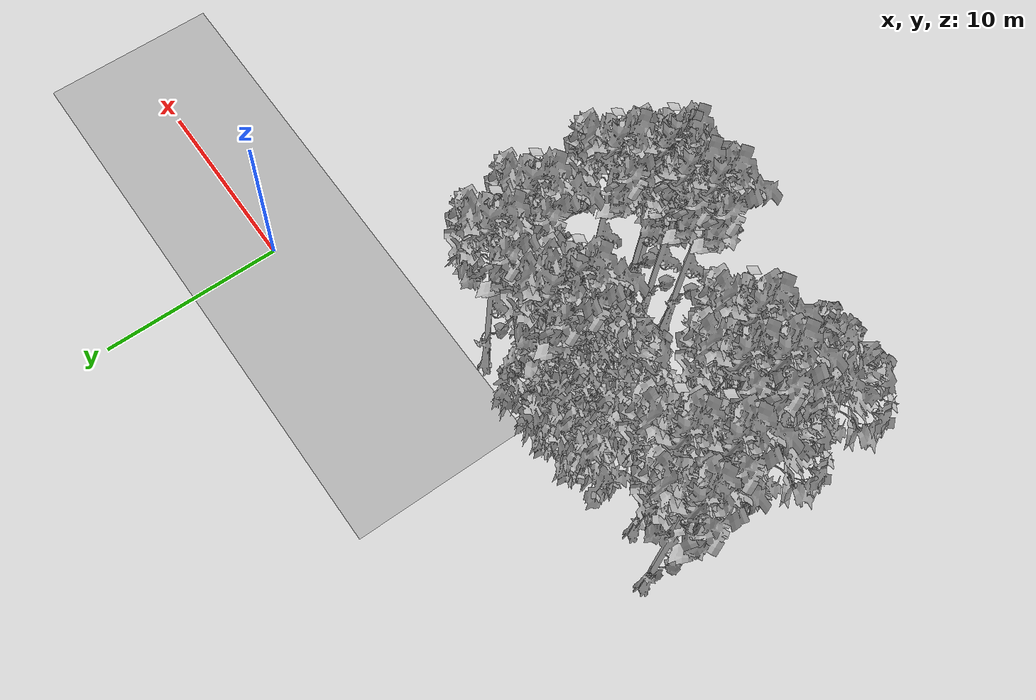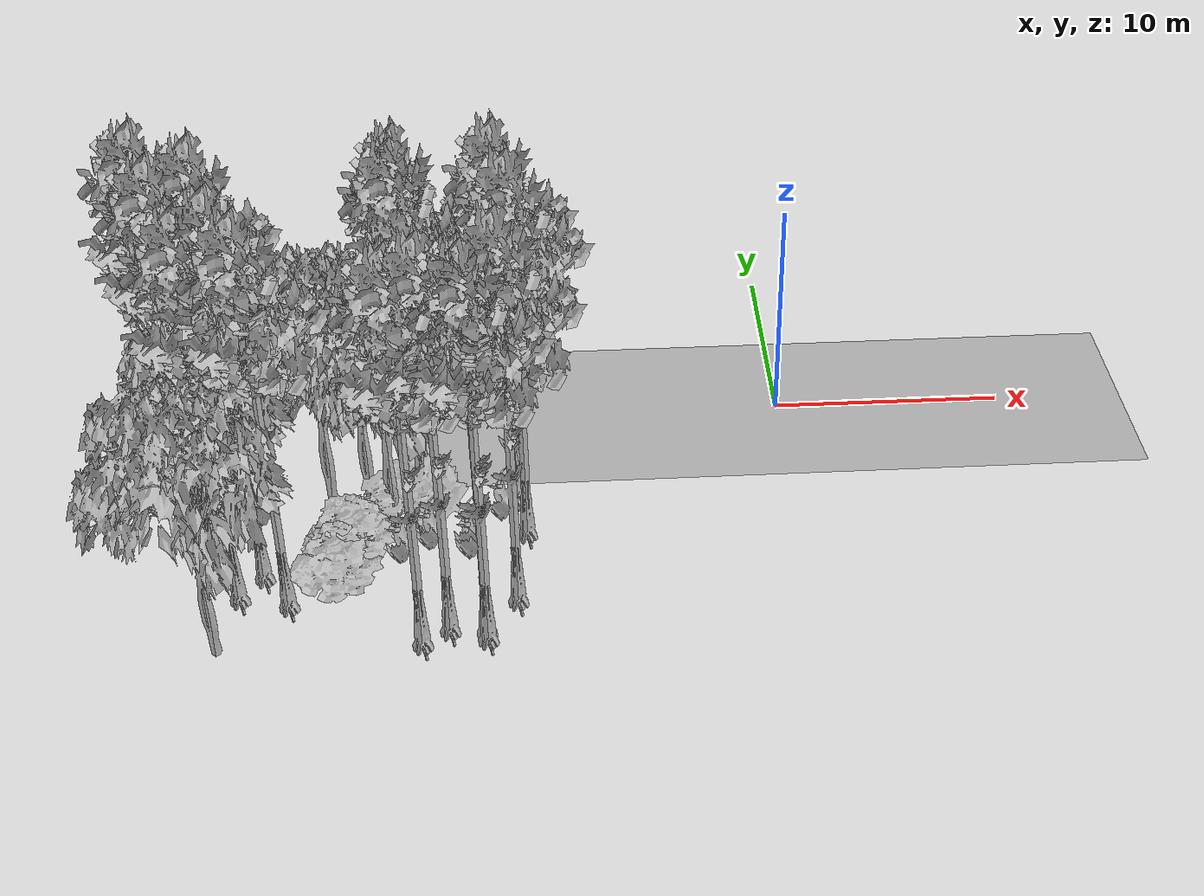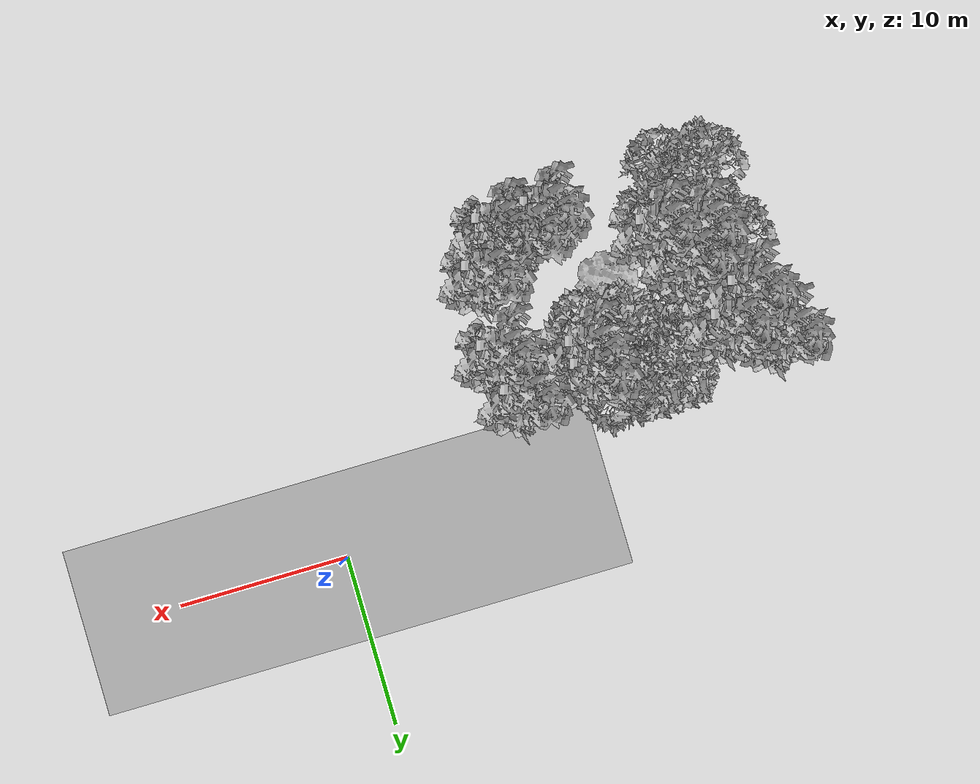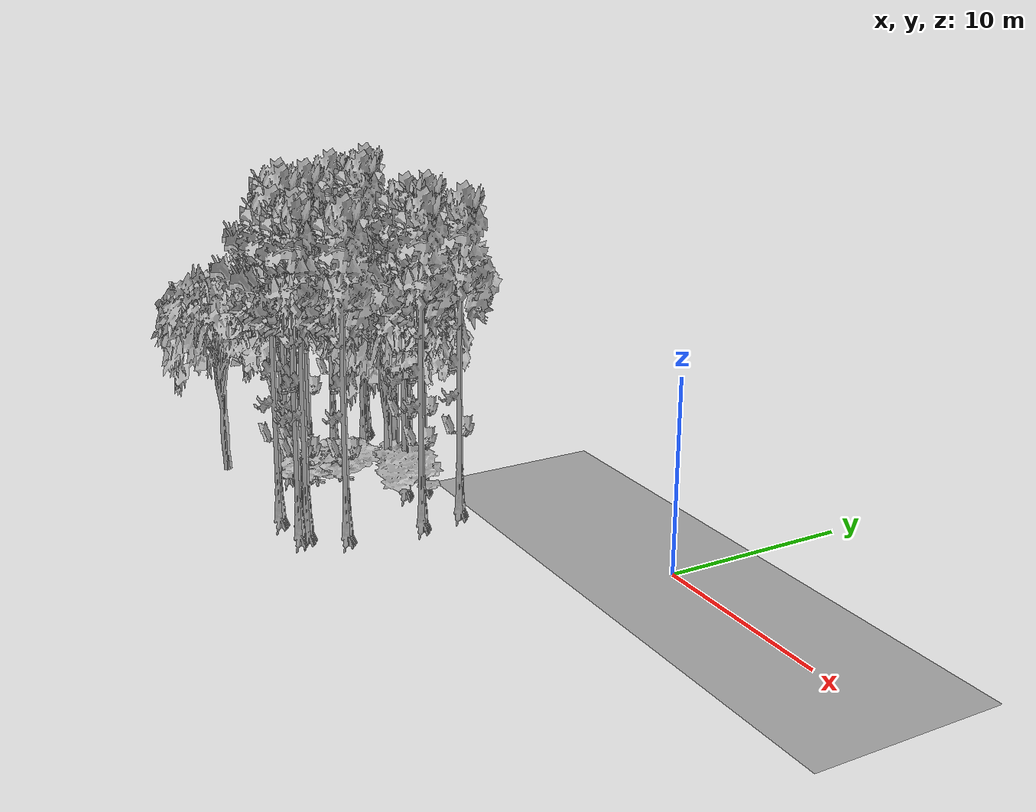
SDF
<sdf version="1.7">
 <world name="default">
  <model name="ground_plane">
   <static>1</static>
   <link name="link">
    <collision name="collision">
     <pose>-50 0 0 0 -0 0</pose>
     <geometry><plane><normal>0 0 1</normal><size>100 100</size></plane></geometry>
     <surface><contact><ode><min_depth>0.01</min_depth><max_vel>0</max_vel></ode></contact></surface>
    </collision>
    <visual name="grass">
     <cast_shadows>0</cast_shadows>
     <geometry>
      <mesh>
       <scale>0.5814285714285714 0.18142857142857144 0.1</scale>
       <uri>file://grass_plane/meshes/grass_plane.dae</uri>
      </mesh>
     </geometry>
    </visual>
   </link>
  </model>
  <model name="Tree 26">
   <static>1</static>
   <pose>-21.81426646399814 -9.955179589205766 0 1.57079 -0 0</pose>
   <link name="link">
    <collision name="collision">
     <geometry><mesh><scale>3.5 5 3.5</scale><uri>model://tree_9/meshes/tree_9.obj</uri></mesh></geometry>
    </collision>
    <visual name="visual">
     <geometry><mesh><scale>3.5 5 3.5</scale><uri>model://tree_9/meshes/tree_9.obj</uri></mesh></geometry>
    </visual>
   </link>
  </model>
  <model name="Tree 32">
   <static>1</static>
   <pose>-25.263312509131836 -4.865524858127504 0 1.57079 -0 0</pose>
   <link name="link">
    <collision name="collision">
     <geometry><mesh><scale>3.5 5 3.5</scale><uri>model://tree_9/meshes/tree_9.obj</uri></mesh></geometry>
    </collision>
    <visual name="visual">
     <geometry><mesh><scale>3.5 5 3.5</scale><uri>model://tree_9/meshes/tree_9.obj</uri></mesh></geometry>
    </visual>
   </link>
  </model>
  <model name="Tree 40">
   <static>1</static>
   <pose>-18.925213621081156 -10.67465627036351 0 1.57079 -0 0</pose>
   <link name="link">
    <collision name="collision">
     <geometry><mesh><scale>4 2.5 4</scale><uri>model://tree_1/meshes/tree_1.obj</uri></mesh></geometry>
    </collision>
    <visual name="visual">
     <geometry><mesh><scale>4 2.5 4</scale><uri>model://tree_1/meshes/tree_1.obj</uri></mesh></geometry>
    </visual>
   </link>
  </model>
  <model name="Tree 88">
   <static>1</static>
   <pose>-22.667752243933972 -11.171424832539866 0 1.57079 -0 0</pose>
   <link name="link">
    <collision name="collision">
     <geometry><mesh><scale>3.5 5 3.5</scale><uri>model://tree_9/meshes/tree_9.obj</uri></mesh></geometry>
    </collision>
    <visual name="visual">
     <geometry><mesh><scale>3.5 5 3.5</scale><uri>model://tree_9/meshes/tree_9.obj</uri></mesh></geometry>
    </visual>
   </link>
  </model>
  <model name="Tree 106">
   <static>1</static>
   <pose>-15.326778111708776 -14.18018601526747 0 1.57079 -0 0</pose>
   <link name="link">
    <collision name="collision">
     <geometry><mesh><scale>3.5 5 3.5</scale><uri>model://tree_9/meshes/tree_9.obj</uri></mesh></geometry>
    </collision>
    <visual name="visual">
     <geometry><mesh><scale>3.5 5 3.5</scale><uri>model://tree_9/meshes/tree_9.obj</uri></mesh></geometry>
    </visual>
   </link>
  </model>
  <model name="Tree 119">
   <static>1</static>
   <pose>-16.790973046260042 -7.2710794713519515 0 1.57079 -0 0</pose>
   <link name="link">
    <collision name="collision">
     <geometry><mesh><scale>3.5 5 3.5</scale><uri>model://tree_2/meshes/tree_2.obj</uri></mesh></geometry>
    </collision>
    <visual name="visual">
     <geometry><mesh><scale>3.5 5 3.5</scale><uri>model://tree_2/meshes/tree_2.obj</uri></mesh></geometry>
    </visual>
   </link>
  </model>
  <model name="Tree 120">
   <static>1</static>
   <pose>-11.755123277487499 -5.40728953295236 0 1.57079 -0 0</pose>
   <link name="link">
    <collision name="collision">
     <geometry><mesh><scale>3.5 5 3.5</scale><uri>model://tree_9/meshes/tree_9.obj</uri></mesh></geometry>
    </collision>
    <visual name="visual">
     <geometry><mesh><scale>3.5 5 3.5</scale><uri>model://tree_9/meshes/tree_9.obj</uri></mesh></geometry>
    </visual>
   </link>
  </model>
  <model name="Tree 156">
   <static>1</static>
   <pose>-11.636256380521388 -11.921965326007623 0 1.57079 -0 0</pose>
   <link name="link">
    <collision name="collision">
     <geometry><mesh><scale>3.5 5 3.5</scale><uri>model://tree_9/meshes/tree_9.obj</uri></mesh></geometry>
    </collision>
    <visual name="visual">
     <geometry><mesh><scale>3.5 5 3.5</scale><uri>model://tree_9/meshes/tree_9.obj</uri></mesh></geometry>
    </visual>
   </link>
  </model>
  <model name="Tree 197">
   <static>1</static>
   <pose>-20.672781784686784 -11.694778869143912 0 1.57079 -0 0</pose>
   <link name="link">
    <collision name="collision">
     <geometry><mesh><scale>3.5 5 3.5</scale><uri>model://tree_9/meshes/tree_9.obj</uri></mesh></geometry>
    </collision>
    <visual name="visual">
     <geometry><mesh><scale>3.5 5 3.5</scale><uri>model://tree_9/meshes/tree_9.obj</uri></mesh></geometry>
    </visual>
   </link>
  </model>
  <model name="Tree 220">
   <static>1</static>
   <pose>-23.218907804226607 -14.469249434961368 0 1.57079 -0 0</pose>
   <link name="link">
    <collision name="collision">
     <geometry><mesh><scale>3.5 5 3.5</scale><uri>model://tree_2/meshes/tree_2.obj</uri></mesh></geometry>
    </collision>
    <visual name="visual">
     <geometry><mesh><scale>3.5 5 3.5</scale><uri>model://tree_2/meshes/tree_2.obj</uri></mesh></geometry>
    </visual>
   </link>
  </model>
  <model name="Tree 242">
   <static>1</static>
   <pose>-18.553112595651527 -9.096279184458105 0 1.57079 -0 0</pose>
   <link name="link">
    <collision name="collision">
     <geometry><mesh><scale>4 2.5 4</scale><uri>model://tree_1/meshes/tree_1.obj</uri></mesh></geometry>
    </collision>
    <visual name="visual">
     <geometry><mesh><scale>4 2.5 4</scale><uri>model://tree_1/meshes/tree_1.obj</uri></mesh></geometry>
    </visual>
   </link>
  </model>
  <model name="Tree 248">
   <static>1</static>
   <pose>-23.54117143861774 -10.493422344050998 0 1.57079 -0 0</pose>
   <link name="link">
    <collision name="collision">
     <geometry><mesh><scale>3.5 5 3.5</scale><uri>model://tree_2/meshes/tree_2.obj</uri></mesh></geometry>
    </collision>
    <visual name="visual">
     <geometry><mesh><scale>3.5 5 3.5</scale><uri>model://tree_2/meshes/tree_2.obj</uri></mesh></geometry>
    </visual>
   </link>
  </model>
  <model name="Tree 289">
   <static>1</static>
   <pose>-15.466106259153904 -5.681305318299573 0 1.57079 -0 0</pose>
   <link name="link">
    <collision name="collision">
     <geometry><mesh><scale>3.5 5 3.5</scale><uri>model://tree_9/meshes/tree_9.obj</uri></mesh></geometry>
    </collision>
    <visual name="visual">
     <geometry><mesh><scale>3.5 5 3.5</scale><uri>model://tree_9/meshes/tree_9.obj</uri></mesh></geometry>
    </visual>
   </link>
  </model>
  <model name="Tree 302">
   <static>1</static>
   <pose>-17.916037148924204 -5.45546969509477 0 1.57079 -0 0</pose>
   <link name="link">
    <collision name="collision">
     <geometry><mesh><scale>3.5 5 3.5</scale><uri>model://tree_2/meshes/tree_2.obj</uri></mesh></geometry>
    </collision>
    <visual name="visual">
     <geometry><mesh><scale>3.5 5 3.5</scale><uri>model://tree_2/meshes/tree_2.obj</uri></mesh></geometry>
    </visual>
   </link>
  </model>
  <model name="Tree 312">
   <static>1</static>
   <pose>-19.490180313389512 -5.56123504551617 0 1.57079 -0 0</pose>
   <link name="link">
    <collision name="collision">
     <geometry><mesh><scale>3.5 5 3.5</scale><uri>model://tree_2/meshes/tree_2.obj</uri></mesh></geometry>
    </collision>
    <visual name="visual">
     <geometry><mesh><scale>3.5 5 3.5</scale><uri>model://tree_2/meshes/tree_2.obj</uri></mesh></geometry>
    </visual>
   </link>
  </model>
  <model name="Tree 333">
   <static>1</static>
   <pose>-14.283443841256009 -13.462738141952128 0 1.57079 -0 0</pose>
   <link name="link">
    <collision name="collision">
     <geometry><mesh><scale>3.5 5 3.5</scale><uri>model://tree_9/meshes/tree_9.obj</uri></mesh></geometry>
    </collision>
    <visual name="visual">
     <geometry><mesh><scale>3.5 5 3.5</scale><uri>model://tree_9/meshes/tree_9.obj</uri></mesh></geometry>
    </visual>
   </link>
  </model>
  <model name="Tree 343">
   <static>1</static>
   <pose>-11.243578233066962 -7.864538664450418 0 1.57079 -0 0</pose>
   <link name="link">
    <collision name="collision">
     <geometry><mesh><scale>3.5 5 3.5</scale><uri>model://tree_9/meshes/tree_9.obj</uri></mesh></geometry>
    </collision>
    <visual name="visual">
     <geometry><mesh><scale>3.5 5 3.5</scale><uri>model://tree_9/meshes/tree_9.obj</uri></mesh></geometry>
    </visual>
   </link>
  </model>
  <model name="Tree 356">
   <static>1</static>
   <pose>-24.21181855692099 -7.474295265052751 0 1.57079 -0 0</pose>
   <link name="link">
    <collision name="collision">
     <geometry><mesh><scale>3.5 5 3.5</scale><uri>model://tree_9/meshes/tree_9.obj</uri></mesh></geometry>
    </collision>
    <visual name="visual">
     <geometry><mesh><scale>3.5 5 3.5</scale><uri>model://tree_9/meshes/tree_9.obj</uri></mesh></geometry>
    </visual>
   </link>
  </model>
  <model name="Tree 357">
   <static>1</static>
   <pose>-12.852554006663837 -13.594178349505356 0 1.57079 -0 0</pose>
   <link name="link">
    <collision name="collision">
     <geometry><mesh><scale>3.5 5 3.5</scale><uri>model://tree_9/meshes/tree_9.obj</uri></mesh></geometry>
    </collision>
    <visual name="visual">
     <geometry><mesh><scale>3.5 5 3.5</scale><uri>model://tree_9/meshes/tree_9.obj</uri></mesh></geometry>
    </visual>
   </link>
  </model>
  <model name="Tree 415">
   <static>1</static>
   <pose>-12.796896579255716 -14.054241093308026 0 1.57079 -0 0</pose>
   <link name="link">
    <collision name="collision">
     <geometry><mesh><scale>3.5 5 3.5</scale><uri>model://tree_9/meshes/tree_9.obj</uri></mesh></geometry>
    </collision>
    <visual name="visual">
     <geometry><mesh><scale>3.5 5 3.5</scale><uri>model://tree_9/meshes/tree_9.obj</uri></mesh></geometry>
    </visual>
   </link>
  </model>
  <model name="Tree 467">
   <static>1</static>
   <pose>-15.525871717955248 -6.828468497685554 0 1.57079 -0 0</pose>
   <link name="link">
    <collision name="collision">
     <geometry><mesh><scale>3.5 5 3.5</scale><uri>model://tree_9/meshes/tree_9.obj</uri></mesh></geometry>
    </collision>
    <visual name="visual">
     <geometry><mesh><scale>3.5 5 3.5</scale><uri>model://tree_9/meshes/tree_9.obj</uri></mesh></geometry>
    </visual>
   </link>
  </model>
  <model name="Tree 496">
   <static>1</static>
   <pose>-15.897243657075045 -6.953259313140384 0 1.57079 -0 0</pose>
   <link name="link">
    <collision name="collision">
     <geometry><mesh><scale>3 2 3</scale><uri>model://tree_3/meshes/tree_3.obj</uri></mesh></geometry>
    </collision>
    <visual name="visual">
     <geometry><mesh><scale>3 2 3</scale><uri>model://tree_3/meshes/tree_3.obj</uri></mesh></geometry>
    </visual>
   </link>
  </model>
  <model name="Tree 499">
   <static>1</static>
   <pose>-22.929414247781416 -6.076570659972036 0 1.57079 -0 0</pose>
   <link name="link">
    <collision name="collision">
     <geometry><mesh><scale>3.5 5 3.5</scale><uri>model://tree_9/meshes/tree_9.obj</uri></mesh></geometry>
    </collision>
    <visual name="visual">
     <geometry><mesh><scale>3.5 5 3.5</scale><uri>model://tree_9/meshes/tree_9.obj</uri></mesh></geometry>
    </visual>
   </link>
  </model>
 </world>
</sdf>
